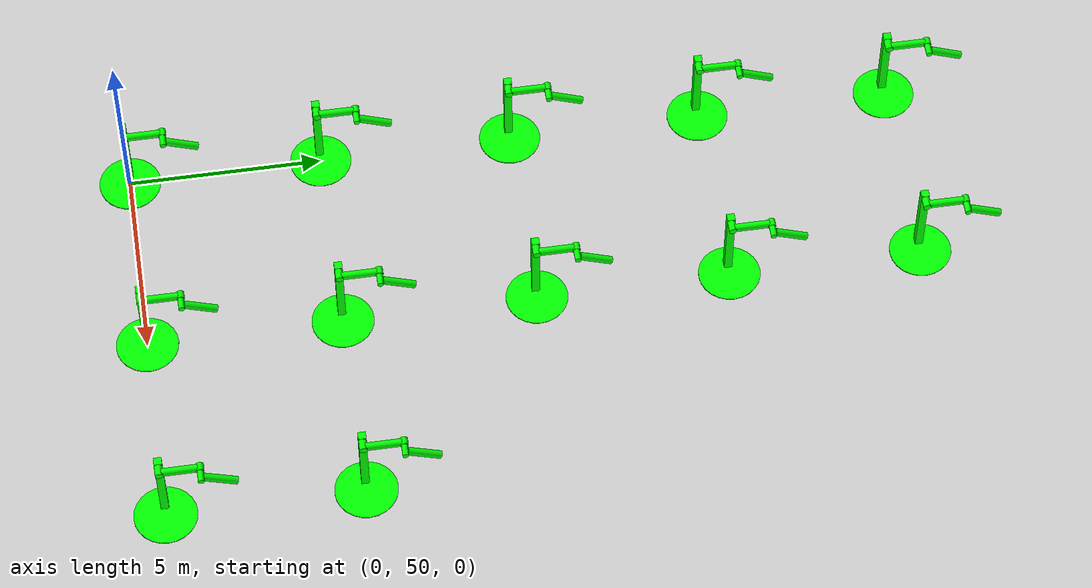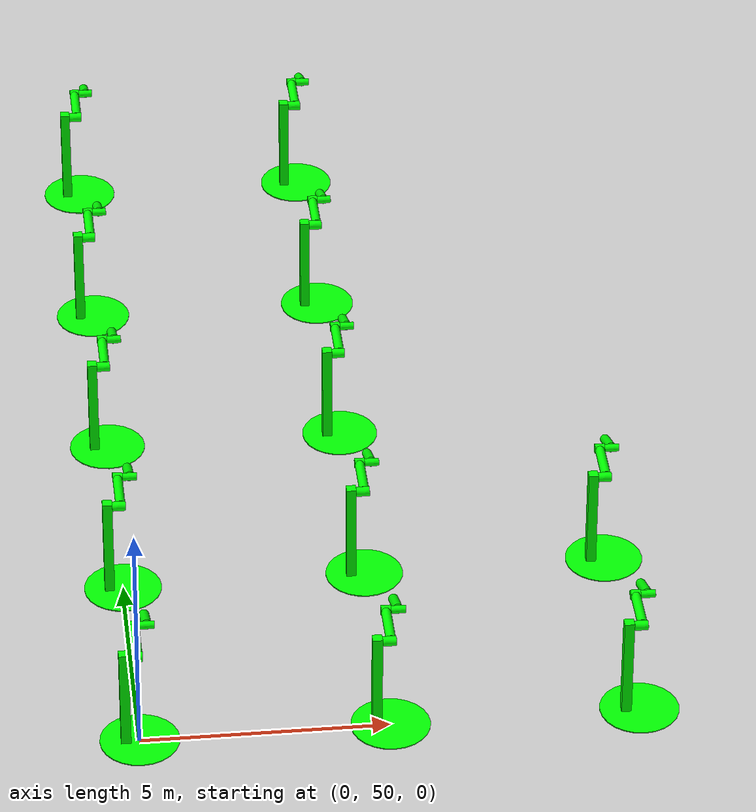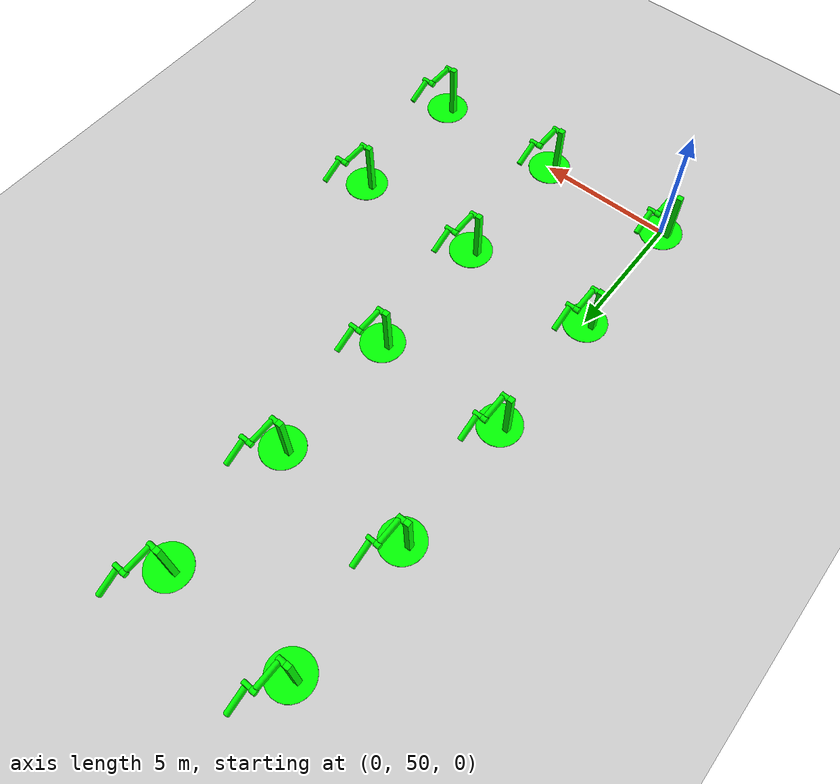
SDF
<sdf version="1.6">
 <world name="double_pendulums">
  <model name="ground_plane">
   <static>true</static>
   <link name="link">
    <collision name="collision">
     <geometry><plane><normal>0 0 1</normal><size>100 100</size></plane></geometry>
    </collision>
    <visual name="visual">
     <geometry><plane><normal>0 0 1</normal><size>100 100</size></plane></geometry>
     <material>
      <ambient>0.8 0.8 0.8 1</ambient>
      <diffuse>0.8 0.8 0.8 1</diffuse>
      <specular>0.8 0.8 0.8 1</specular>
     </material>
    </visual>
   </link>
  </model>
  <model name="dbl_pendulum_155">
   <pose>0 50 0 0 0 0</pose>
   <link name="base">
    <inertial><mass>100</mass></inertial>
    <visual name="vis_plate_on_ground">
     <pose>0 0 0.01 0 0 0</pose>
     <geometry><cylinder><radius>0.8</radius><length>0.02</length></cylinder></geometry>
     <material><ambient>0 1 0 1</ambient><diffuse>0 1 0 1</diffuse><specular>0 1 0 1</specular></material>
    </visual>
    <visual name="vis_pole">
     <pose>-0.275 0 1.1 0 0 0</pose>
     <geometry><box><size>0.2 0.2 2.2</size></box></geometry>
     <material><ambient>0 1 0 1</ambient><diffuse>0 1 0 1</diffuse><specular>0 1 0 1</specular></material>
    </visual>
    <collision name="col_plate_on_ground">
     <pose>0 0 0.01 0 0 0</pose>
     <geometry><cylinder><radius>0.8</radius><length>0.02</length></cylinder></geometry>
    </collision>
    <collision name="col_pole">
     <pose>-0.275 0 1.1 0 0 0</pose>
     <geometry><box><size>0.2 0.2 2.2</size></box></geometry>
    </collision>
   </link>
   <link name="upper_link">
    <pose>0 0 2.1 -1.5708 0 0</pose>
    <inertial><pose>0 0 0.5 0 0 0</pose></inertial>
    <visual name="vis_upper_joint">
     <pose>-0.05 0 0 0 1.5708 0</pose>
     <geometry><cylinder><radius>0.1</radius><length>0.3</length></cylinder></geometry>
     <material><ambient>0 1 0 1</ambient><diffuse>0 1 0 1</diffuse><specular>0 1 0 1</specular></material>
    </visual>
    <visual name="vis_lower_joint">
     <pose>0 0 1.0 0 1.5708 0</pose>
     <geometry><cylinder><radius>0.1</radius><length>0.2</length></cylinder></geometry>
     <material><ambient>0 1 0 1</ambient><diffuse>0 1 0 1</diffuse><specular>0 1 0 1</specular></material>
    </visual>
    <visual name="vis_cylinder">
     <pose>0 0 0.5 0 0 0</pose>
     <geometry><cylinder><radius>0.1</radius><length>0.9</length></cylinder></geometry>
     <material><ambient>0 1 0 1</ambient><diffuse>0 1 0 1</diffuse><specular>0 1 0 1</specular></material>
    </visual>
    <collision name="col_upper_joint">
     <pose>-0.05 0 0 0 1.5708 0</pose>
     <geometry><cylinder><radius>0.1</radius><length>0.3</length></cylinder></geometry>
    </collision>
    <collision name="col_lower_joint">
     <pose>0 0 1.0 0 1.5708 0</pose>
     <geometry><cylinder><radius>0.1</radius><length>0.2</length></cylinder></geometry>
    </collision>
    <collision name="col_cylinder">
     <pose>0 0 0.5 0 0 0</pose>
     <geometry><cylinder><radius>0.1</radius><length>0.9</length></cylinder></geometry>
    </collision>
   </link>
   <link name="lower_link">
    <pose>0.25 1.0 2.1 -2 0 0</pose>
    <inertial><pose>0 0 0.5 0 0 0</pose></inertial>
    <visual name="vis_lower_joint">
     <pose>0 0 0 0 1.5708 0</pose>
     <geometry><cylinder><radius>0.08</radius><length>0.3</length></cylinder></geometry>
     <material><ambient>0 1 0 1</ambient><diffuse>0 1 0 1</diffuse><specular>0 1 0 1</specular></material>
    </visual>
    <visual name="vis_cylinder">
     <pose>0 0 0.5 0 0 0</pose>
     <geometry><cylinder><radius>0.1</radius><length>0.9</length></cylinder></geometry>
     <material><ambient>0 1 0 1</ambient><diffuse>0 1 0 1</diffuse><specular>0 1 0 1</specular></material>
    </visual>
    <collision name="col_lower_joint">
     <pose>0 0 0 0 1.5708 0</pose>
     <geometry><cylinder><radius>0.08</radius><length>0.3</length></cylinder></geometry>
    </collision>
    <collision name="col_cylinder">
     <pose>0 0 0.5 0 0 0</pose>
     <geometry><cylinder><radius>0.1</radius><length>0.9</length></cylinder></geometry>
    </collision>
   </link>
   <joint name="upper_joint" type="revolute">
    <parent>base</parent>
    <child>upper_link</child>
    <axis><xyz>1.0 0 0</xyz></axis>
   </joint>
   <joint name="lower_joint" type="revolute">
    <parent>upper_link</parent>
    <child>lower_link</child>
    <axis><xyz>1.0 0 0</xyz></axis>
   </joint>
  </model>
  <model name="dbl_pendulum_156">
   <pose>5 50 0 0 0 0</pose>
   <link name="base">
    <inertial><mass>100</mass></inertial>
    <visual name="vis_plate_on_ground">
     <pose>0 0 0.01 0 0 0</pose>
     <geometry><cylinder><radius>0.8</radius><length>0.02</length></cylinder></geometry>
     <material><ambient>0 1 0 1</ambient><diffuse>0 1 0 1</diffuse><specular>0 1 0 1</specular></material>
    </visual>
    <visual name="vis_pole">
     <pose>-0.275 0 1.1 0 0 0</pose>
     <geometry><box><size>0.2 0.2 2.2</size></box></geometry>
     <material><ambient>0 1 0 1</ambient><diffuse>0 1 0 1</diffuse><specular>0 1 0 1</specular></material>
    </visual>
    <collision name="col_plate_on_ground">
     <pose>0 0 0.01 0 0 0</pose>
     <geometry><cylinder><radius>0.8</radius><length>0.02</length></cylinder></geometry>
    </collision>
    <collision name="col_pole">
     <pose>-0.275 0 1.1 0 0 0</pose>
     <geometry><box><size>0.2 0.2 2.2</size></box></geometry>
    </collision>
   </link>
   <link name="upper_link">
    <pose>0 0 2.1 -1.5708 0 0</pose>
    <inertial><pose>0 0 0.5 0 0 0</pose></inertial>
    <visual name="vis_upper_joint">
     <pose>-0.05 0 0 0 1.5708 0</pose>
     <geometry><cylinder><radius>0.1</radius><length>0.3</length></cylinder></geometry>
     <material><ambient>0 1 0 1</ambient><diffuse>0 1 0 1</diffuse><specular>0 1 0 1</specular></material>
    </visual>
    <visual name="vis_lower_joint">
     <pose>0 0 1.0 0 1.5708 0</pose>
     <geometry><cylinder><radius>0.1</radius><length>0.2</length></cylinder></geometry>
     <material><ambient>0 1 0 1</ambient><diffuse>0 1 0 1</diffuse><specular>0 1 0 1</specular></material>
    </visual>
    <visual name="vis_cylinder">
     <pose>0 0 0.5 0 0 0</pose>
     <geometry><cylinder><radius>0.1</radius><length>0.9</length></cylinder></geometry>
     <material><ambient>0 1 0 1</ambient><diffuse>0 1 0 1</diffuse><specular>0 1 0 1</specular></material>
    </visual>
    <collision name="col_upper_joint">
     <pose>-0.05 0 0 0 1.5708 0</pose>
     <geometry><cylinder><radius>0.1</radius><length>0.3</length></cylinder></geometry>
    </collision>
    <collision name="col_lower_joint">
     <pose>0 0 1.0 0 1.5708 0</pose>
     <geometry><cylinder><radius>0.1</radius><length>0.2</length></cylinder></geometry>
    </collision>
    <collision name="col_cylinder">
     <pose>0 0 0.5 0 0 0</pose>
     <geometry><cylinder><radius>0.1</radius><length>0.9</length></cylinder></geometry>
    </collision>
   </link>
   <link name="lower_link">
    <pose>0.25 1.0 2.1 -2 0 0</pose>
    <inertial><pose>0 0 0.5 0 0 0</pose></inertial>
    <visual name="vis_lower_joint">
     <pose>0 0 0 0 1.5708 0</pose>
     <geometry><cylinder><radius>0.08</radius><length>0.3</length></cylinder></geometry>
     <material><ambient>0 1 0 1</ambient><diffuse>0 1 0 1</diffuse><specular>0 1 0 1</specular></material>
    </visual>
    <visual name="vis_cylinder">
     <pose>0 0 0.5 0 0 0</pose>
     <geometry><cylinder><radius>0.1</radius><length>0.9</length></cylinder></geometry>
     <material><ambient>0 1 0 1</ambient><diffuse>0 1 0 1</diffuse><specular>0 1 0 1</specular></material>
    </visual>
    <collision name="col_lower_joint">
     <pose>0 0 0 0 1.5708 0</pose>
     <geometry><cylinder><radius>0.08</radius><length>0.3</length></cylinder></geometry>
    </collision>
    <collision name="col_cylinder">
     <pose>0 0 0.5 0 0 0</pose>
     <geometry><cylinder><radius>0.1</radius><length>0.9</length></cylinder></geometry>
    </collision>
   </link>
   <joint name="upper_joint" type="revolute">
    <parent>base</parent>
    <child>upper_link</child>
    <axis><xyz>1.0 0 0</xyz></axis>
   </joint>
   <joint name="lower_joint" type="revolute">
    <parent>upper_link</parent>
    <child>lower_link</child>
    <axis><xyz>1.0 0 0</xyz></axis>
   </joint>
  </model>
  <model name="dbl_pendulum_157">
   <pose>10 50 0 0 0 0</pose>
   <link name="base">
    <inertial><mass>100</mass></inertial>
    <visual name="vis_plate_on_ground">
     <pose>0 0 0.01 0 0 0</pose>
     <geometry><cylinder><radius>0.8</radius><length>0.02</length></cylinder></geometry>
     <material><ambient>0 1 0 1</ambient><diffuse>0 1 0 1</diffuse><specular>0 1 0 1</specular></material>
    </visual>
    <visual name="vis_pole">
     <pose>-0.275 0 1.1 0 0 0</pose>
     <geometry><box><size>0.2 0.2 2.2</size></box></geometry>
     <material><ambient>0 1 0 1</ambient><diffuse>0 1 0 1</diffuse><specular>0 1 0 1</specular></material>
    </visual>
    <collision name="col_plate_on_ground">
     <pose>0 0 0.01 0 0 0</pose>
     <geometry><cylinder><radius>0.8</radius><length>0.02</length></cylinder></geometry>
    </collision>
    <collision name="col_pole">
     <pose>-0.275 0 1.1 0 0 0</pose>
     <geometry><box><size>0.2 0.2 2.2</size></box></geometry>
    </collision>
   </link>
   <link name="upper_link">
    <pose>0 0 2.1 -1.5708 0 0</pose>
    <inertial><pose>0 0 0.5 0 0 0</pose></inertial>
    <visual name="vis_upper_joint">
     <pose>-0.05 0 0 0 1.5708 0</pose>
     <geometry><cylinder><radius>0.1</radius><length>0.3</length></cylinder></geometry>
     <material><ambient>0 1 0 1</ambient><diffuse>0 1 0 1</diffuse><specular>0 1 0 1</specular></material>
    </visual>
    <visual name="vis_lower_joint">
     <pose>0 0 1.0 0 1.5708 0</pose>
     <geometry><cylinder><radius>0.1</radius><length>0.2</length></cylinder></geometry>
     <material><ambient>0 1 0 1</ambient><diffuse>0 1 0 1</diffuse><specular>0 1 0 1</specular></material>
    </visual>
    <visual name="vis_cylinder">
     <pose>0 0 0.5 0 0 0</pose>
     <geometry><cylinder><radius>0.1</radius><length>0.9</length></cylinder></geometry>
     <material><ambient>0 1 0 1</ambient><diffuse>0 1 0 1</diffuse><specular>0 1 0 1</specular></material>
    </visual>
    <collision name="col_upper_joint">
     <pose>-0.05 0 0 0 1.5708 0</pose>
     <geometry><cylinder><radius>0.1</radius><length>0.3</length></cylinder></geometry>
    </collision>
    <collision name="col_lower_joint">
     <pose>0 0 1.0 0 1.5708 0</pose>
     <geometry><cylinder><radius>0.1</radius><length>0.2</length></cylinder></geometry>
    </collision>
    <collision name="col_cylinder">
     <pose>0 0 0.5 0 0 0</pose>
     <geometry><cylinder><radius>0.1</radius><length>0.9</length></cylinder></geometry>
    </collision>
   </link>
   <link name="lower_link">
    <pose>0.25 1.0 2.1 -2 0 0</pose>
    <inertial><pose>0 0 0.5 0 0 0</pose></inertial>
    <visual name="vis_lower_joint">
     <pose>0 0 0 0 1.5708 0</pose>
     <geometry><cylinder><radius>0.08</radius><length>0.3</length></cylinder></geometry>
     <material><ambient>0 1 0 1</ambient><diffuse>0 1 0 1</diffuse><specular>0 1 0 1</specular></material>
    </visual>
    <visual name="vis_cylinder">
     <pose>0 0 0.5 0 0 0</pose>
     <geometry><cylinder><radius>0.1</radius><length>0.9</length></cylinder></geometry>
     <material><ambient>0 1 0 1</ambient><diffuse>0 1 0 1</diffuse><specular>0 1 0 1</specular></material>
    </visual>
    <collision name="col_lower_joint">
     <pose>0 0 0 0 1.5708 0</pose>
     <geometry><cylinder><radius>0.08</radius><length>0.3</length></cylinder></geometry>
    </collision>
    <collision name="col_cylinder">
     <pose>0 0 0.5 0 0 0</pose>
     <geometry><cylinder><radius>0.1</radius><length>0.9</length></cylinder></geometry>
    </collision>
   </link>
   <joint name="upper_joint" type="revolute">
    <parent>base</parent>
    <child>upper_link</child>
    <axis><xyz>1.0 0 0</xyz></axis>
   </joint>
   <joint name="lower_joint" type="revolute">
    <parent>upper_link</parent>
    <child>lower_link</child>
    <axis><xyz>1.0 0 0</xyz></axis>
   </joint>
  </model>
  <model name="dbl_pendulum_170">
   <pose>0 55 0 0 0 0</pose>
   <link name="base">
    <inertial><mass>100</mass></inertial>
    <visual name="vis_plate_on_ground">
     <pose>0 0 0.01 0 0 0</pose>
     <geometry><cylinder><radius>0.8</radius><length>0.02</length></cylinder></geometry>
     <material><ambient>0 1 0 1</ambient><diffuse>0 1 0 1</diffuse><specular>0 1 0 1</specular></material>
    </visual>
    <visual name="vis_pole">
     <pose>-0.275 0 1.1 0 0 0</pose>
     <geometry><box><size>0.2 0.2 2.2</size></box></geometry>
     <material><ambient>0 1 0 1</ambient><diffuse>0 1 0 1</diffuse><specular>0 1 0 1</specular></material>
    </visual>
    <collision name="col_plate_on_ground">
     <pose>0 0 0.01 0 0 0</pose>
     <geometry><cylinder><radius>0.8</radius><length>0.02</length></cylinder></geometry>
    </collision>
    <collision name="col_pole">
     <pose>-0.275 0 1.1 0 0 0</pose>
     <geometry><box><size>0.2 0.2 2.2</size></box></geometry>
    </collision>
   </link>
   <link name="upper_link">
    <pose>0 0 2.1 -1.5708 0 0</pose>
    <inertial><pose>0 0 0.5 0 0 0</pose></inertial>
    <visual name="vis_upper_joint">
     <pose>-0.05 0 0 0 1.5708 0</pose>
     <geometry><cylinder><radius>0.1</radius><length>0.3</length></cylinder></geometry>
     <material><ambient>0 1 0 1</ambient><diffuse>0 1 0 1</diffuse><specular>0 1 0 1</specular></material>
    </visual>
    <visual name="vis_lower_joint">
     <pose>0 0 1.0 0 1.5708 0</pose>
     <geometry><cylinder><radius>0.1</radius><length>0.2</length></cylinder></geometry>
     <material><ambient>0 1 0 1</ambient><diffuse>0 1 0 1</diffuse><specular>0 1 0 1</specular></material>
    </visual>
    <visual name="vis_cylinder">
     <pose>0 0 0.5 0 0 0</pose>
     <geometry><cylinder><radius>0.1</radius><length>0.9</length></cylinder></geometry>
     <material><ambient>0 1 0 1</ambient><diffuse>0 1 0 1</diffuse><specular>0 1 0 1</specular></material>
    </visual>
    <collision name="col_upper_joint">
     <pose>-0.05 0 0 0 1.5708 0</pose>
     <geometry><cylinder><radius>0.1</radius><length>0.3</length></cylinder></geometry>
    </collision>
    <collision name="col_lower_joint">
     <pose>0 0 1.0 0 1.5708 0</pose>
     <geometry><cylinder><radius>0.1</radius><length>0.2</length></cylinder></geometry>
    </collision>
    <collision name="col_cylinder">
     <pose>0 0 0.5 0 0 0</pose>
     <geometry><cylinder><radius>0.1</radius><length>0.9</length></cylinder></geometry>
    </collision>
   </link>
   <link name="lower_link">
    <pose>0.25 1.0 2.1 -2 0 0</pose>
    <inertial><pose>0 0 0.5 0 0 0</pose></inertial>
    <visual name="vis_lower_joint">
     <pose>0 0 0 0 1.5708 0</pose>
     <geometry><cylinder><radius>0.08</radius><length>0.3</length></cylinder></geometry>
     <material><ambient>0 1 0 1</ambient><diffuse>0 1 0 1</diffuse><specular>0 1 0 1</specular></material>
    </visual>
    <visual name="vis_cylinder">
     <pose>0 0 0.5 0 0 0</pose>
     <geometry><cylinder><radius>0.1</radius><length>0.9</length></cylinder></geometry>
     <material><ambient>0 1 0 1</ambient><diffuse>0 1 0 1</diffuse><specular>0 1 0 1</specular></material>
    </visual>
    <collision name="col_lower_joint">
     <pose>0 0 0 0 1.5708 0</pose>
     <geometry><cylinder><radius>0.08</radius><length>0.3</length></cylinder></geometry>
    </collision>
    <collision name="col_cylinder">
     <pose>0 0 0.5 0 0 0</pose>
     <geometry><cylinder><radius>0.1</radius><length>0.9</length></cylinder></geometry>
    </collision>
   </link>
   <joint name="upper_joint" type="revolute">
    <parent>base</parent>
    <child>upper_link</child>
    <axis><xyz>1.0 0 0</xyz></axis>
   </joint>
   <joint name="lower_joint" type="revolute">
    <parent>upper_link</parent>
    <child>lower_link</child>
    <axis><xyz>1.0 0 0</xyz></axis>
   </joint>
  </model>
  <model name="dbl_pendulum_171">
   <pose>5 55 0 0 0 0</pose>
   <link name="base">
    <inertial><mass>100</mass></inertial>
    <visual name="vis_plate_on_ground">
     <pose>0 0 0.01 0 0 0</pose>
     <geometry><cylinder><radius>0.8</radius><length>0.02</length></cylinder></geometry>
     <material><ambient>0 1 0 1</ambient><diffuse>0 1 0 1</diffuse><specular>0 1 0 1</specular></material>
    </visual>
    <visual name="vis_pole">
     <pose>-0.275 0 1.1 0 0 0</pose>
     <geometry><box><size>0.2 0.2 2.2</size></box></geometry>
     <material><ambient>0 1 0 1</ambient><diffuse>0 1 0 1</diffuse><specular>0 1 0 1</specular></material>
    </visual>
    <collision name="col_plate_on_ground">
     <pose>0 0 0.01 0 0 0</pose>
     <geometry><cylinder><radius>0.8</radius><length>0.02</length></cylinder></geometry>
    </collision>
    <collision name="col_pole">
     <pose>-0.275 0 1.1 0 0 0</pose>
     <geometry><box><size>0.2 0.2 2.2</size></box></geometry>
    </collision>
   </link>
   <link name="upper_link">
    <pose>0 0 2.1 -1.5708 0 0</pose>
    <inertial><pose>0 0 0.5 0 0 0</pose></inertial>
    <visual name="vis_upper_joint">
     <pose>-0.05 0 0 0 1.5708 0</pose>
     <geometry><cylinder><radius>0.1</radius><length>0.3</length></cylinder></geometry>
     <material><ambient>0 1 0 1</ambient><diffuse>0 1 0 1</diffuse><specular>0 1 0 1</specular></material>
    </visual>
    <visual name="vis_lower_joint">
     <pose>0 0 1.0 0 1.5708 0</pose>
     <geometry><cylinder><radius>0.1</radius><length>0.2</length></cylinder></geometry>
     <material><ambient>0 1 0 1</ambient><diffuse>0 1 0 1</diffuse><specular>0 1 0 1</specular></material>
    </visual>
    <visual name="vis_cylinder">
     <pose>0 0 0.5 0 0 0</pose>
     <geometry><cylinder><radius>0.1</radius><length>0.9</length></cylinder></geometry>
     <material><ambient>0 1 0 1</ambient><diffuse>0 1 0 1</diffuse><specular>0 1 0 1</specular></material>
    </visual>
    <collision name="col_upper_joint">
     <pose>-0.05 0 0 0 1.5708 0</pose>
     <geometry><cylinder><radius>0.1</radius><length>0.3</length></cylinder></geometry>
    </collision>
    <collision name="col_lower_joint">
     <pose>0 0 1.0 0 1.5708 0</pose>
     <geometry><cylinder><radius>0.1</radius><length>0.2</length></cylinder></geometry>
    </collision>
    <collision name="col_cylinder">
     <pose>0 0 0.5 0 0 0</pose>
     <geometry><cylinder><radius>0.1</radius><length>0.9</length></cylinder></geometry>
    </collision>
   </link>
   <link name="lower_link">
    <pose>0.25 1.0 2.1 -2 0 0</pose>
    <inertial><pose>0 0 0.5 0 0 0</pose></inertial>
    <visual name="vis_lower_joint">
     <pose>0 0 0 0 1.5708 0</pose>
     <geometry><cylinder><radius>0.08</radius><length>0.3</length></cylinder></geometry>
     <material><ambient>0 1 0 1</ambient><diffuse>0 1 0 1</diffuse><specular>0 1 0 1</specular></material>
    </visual>
    <visual name="vis_cylinder">
     <pose>0 0 0.5 0 0 0</pose>
     <geometry><cylinder><radius>0.1</radius><length>0.9</length></cylinder></geometry>
     <material><ambient>0 1 0 1</ambient><diffuse>0 1 0 1</diffuse><specular>0 1 0 1</specular></material>
    </visual>
    <collision name="col_lower_joint">
     <pose>0 0 0 0 1.5708 0</pose>
     <geometry><cylinder><radius>0.08</radius><length>0.3</length></cylinder></geometry>
    </collision>
    <collision name="col_cylinder">
     <pose>0 0 0.5 0 0 0</pose>
     <geometry><cylinder><radius>0.1</radius><length>0.9</length></cylinder></geometry>
    </collision>
   </link>
   <joint name="upper_joint" type="revolute">
    <parent>base</parent>
    <child>upper_link</child>
    <axis><xyz>1.0 0 0</xyz></axis>
   </joint>
   <joint name="lower_joint" type="revolute">
    <parent>upper_link</parent>
    <child>lower_link</child>
    <axis><xyz>1.0 0 0</xyz></axis>
   </joint>
  </model>
  <model name="dbl_pendulum_172">
   <pose>10 55 0 0 0 0</pose>
   <link name="base">
    <inertial><mass>100</mass></inertial>
    <visual name="vis_plate_on_ground">
     <pose>0 0 0.01 0 0 0</pose>
     <geometry><cylinder><radius>0.8</radius><length>0.02</length></cylinder></geometry>
     <material><ambient>0 1 0 1</ambient><diffuse>0 1 0 1</diffuse><specular>0 1 0 1</specular></material>
    </visual>
    <visual name="vis_pole">
     <pose>-0.275 0 1.1 0 0 0</pose>
     <geometry><box><size>0.2 0.2 2.2</size></box></geometry>
     <material><ambient>0 1 0 1</ambient><diffuse>0 1 0 1</diffuse><specular>0 1 0 1</specular></material>
    </visual>
    <collision name="col_plate_on_ground">
     <pose>0 0 0.01 0 0 0</pose>
     <geometry><cylinder><radius>0.8</radius><length>0.02</length></cylinder></geometry>
    </collision>
    <collision name="col_pole">
     <pose>-0.275 0 1.1 0 0 0</pose>
     <geometry><box><size>0.2 0.2 2.2</size></box></geometry>
    </collision>
   </link>
   <link name="upper_link">
    <pose>0 0 2.1 -1.5708 0 0</pose>
    <inertial><pose>0 0 0.5 0 0 0</pose></inertial>
    <visual name="vis_upper_joint">
     <pose>-0.05 0 0 0 1.5708 0</pose>
     <geometry><cylinder><radius>0.1</radius><length>0.3</length></cylinder></geometry>
     <material><ambient>0 1 0 1</ambient><diffuse>0 1 0 1</diffuse><specular>0 1 0 1</specular></material>
    </visual>
    <visual name="vis_lower_joint">
     <pose>0 0 1.0 0 1.5708 0</pose>
     <geometry><cylinder><radius>0.1</radius><length>0.2</length></cylinder></geometry>
     <material><ambient>0 1 0 1</ambient><diffuse>0 1 0 1</diffuse><specular>0 1 0 1</specular></material>
    </visual>
    <visual name="vis_cylinder">
     <pose>0 0 0.5 0 0 0</pose>
     <geometry><cylinder><radius>0.1</radius><length>0.9</length></cylinder></geometry>
     <material><ambient>0 1 0 1</ambient><diffuse>0 1 0 1</diffuse><specular>0 1 0 1</specular></material>
    </visual>
    <collision name="col_upper_joint">
     <pose>-0.05 0 0 0 1.5708 0</pose>
     <geometry><cylinder><radius>0.1</radius><length>0.3</length></cylinder></geometry>
    </collision>
    <collision name="col_lower_joint">
     <pose>0 0 1.0 0 1.5708 0</pose>
     <geometry><cylinder><radius>0.1</radius><length>0.2</length></cylinder></geometry>
    </collision>
    <collision name="col_cylinder">
     <pose>0 0 0.5 0 0 0</pose>
     <geometry><cylinder><radius>0.1</radius><length>0.9</length></cylinder></geometry>
    </collision>
   </link>
   <link name="lower_link">
    <pose>0.25 1.0 2.1 -2 0 0</pose>
    <inertial><pose>0 0 0.5 0 0 0</pose></inertial>
    <visual name="vis_lower_joint">
     <pose>0 0 0 0 1.5708 0</pose>
     <geometry><cylinder><radius>0.08</radius><length>0.3</length></cylinder></geometry>
     <material><ambient>0 1 0 1</ambient><diffuse>0 1 0 1</diffuse><specular>0 1 0 1</specular></material>
    </visual>
    <visual name="vis_cylinder">
     <pose>0 0 0.5 0 0 0</pose>
     <geometry><cylinder><radius>0.1</radius><length>0.9</length></cylinder></geometry>
     <material><ambient>0 1 0 1</ambient><diffuse>0 1 0 1</diffuse><specular>0 1 0 1</specular></material>
    </visual>
    <collision name="col_lower_joint">
     <pose>0 0 0 0 1.5708 0</pose>
     <geometry><cylinder><radius>0.08</radius><length>0.3</length></cylinder></geometry>
    </collision>
    <collision name="col_cylinder">
     <pose>0 0 0.5 0 0 0</pose>
     <geometry><cylinder><radius>0.1</radius><length>0.9</length></cylinder></geometry>
    </collision>
   </link>
   <joint name="upper_joint" type="revolute">
    <parent>base</parent>
    <child>upper_link</child>
    <axis><xyz>1.0 0 0</xyz></axis>
   </joint>
   <joint name="lower_joint" type="revolute">
    <parent>upper_link</parent>
    <child>lower_link</child>
    <axis><xyz>1.0 0 0</xyz></axis>
   </joint>
  </model>
  <model name="dbl_pendulum_185">
   <pose>0 60 0 0 0 0</pose>
   <link name="base">
    <inertial><mass>100</mass></inertial>
    <visual name="vis_plate_on_ground">
     <pose>0 0 0.01 0 0 0</pose>
     <geometry><cylinder><radius>0.8</radius><length>0.02</length></cylinder></geometry>
     <material><ambient>0 1 0 1</ambient><diffuse>0 1 0 1</diffuse><specular>0 1 0 1</specular></material>
    </visual>
    <visual name="vis_pole">
     <pose>-0.275 0 1.1 0 0 0</pose>
     <geometry><box><size>0.2 0.2 2.2</size></box></geometry>
     <material><ambient>0 1 0 1</ambient><diffuse>0 1 0 1</diffuse><specular>0 1 0 1</specular></material>
    </visual>
    <collision name="col_plate_on_ground">
     <pose>0 0 0.01 0 0 0</pose>
     <geometry><cylinder><radius>0.8</radius><length>0.02</length></cylinder></geometry>
    </collision>
    <collision name="col_pole">
     <pose>-0.275 0 1.1 0 0 0</pose>
     <geometry><box><size>0.2 0.2 2.2</size></box></geometry>
    </collision>
   </link>
   <link name="upper_link">
    <pose>0 0 2.1 -1.5708 0 0</pose>
    <inertial><pose>0 0 0.5 0 0 0</pose></inertial>
    <visual name="vis_upper_joint">
     <pose>-0.05 0 0 0 1.5708 0</pose>
     <geometry><cylinder><radius>0.1</radius><length>0.3</length></cylinder></geometry>
     <material><ambient>0 1 0 1</ambient><diffuse>0 1 0 1</diffuse><specular>0 1 0 1</specular></material>
    </visual>
    <visual name="vis_lower_joint">
     <pose>0 0 1.0 0 1.5708 0</pose>
     <geometry><cylinder><radius>0.1</radius><length>0.2</length></cylinder></geometry>
     <material><ambient>0 1 0 1</ambient><diffuse>0 1 0 1</diffuse><specular>0 1 0 1</specular></material>
    </visual>
    <visual name="vis_cylinder">
     <pose>0 0 0.5 0 0 0</pose>
     <geometry><cylinder><radius>0.1</radius><length>0.9</length></cylinder></geometry>
     <material><ambient>0 1 0 1</ambient><diffuse>0 1 0 1</diffuse><specular>0 1 0 1</specular></material>
    </visual>
    <collision name="col_upper_joint">
     <pose>-0.05 0 0 0 1.5708 0</pose>
     <geometry><cylinder><radius>0.1</radius><length>0.3</length></cylinder></geometry>
    </collision>
    <collision name="col_lower_joint">
     <pose>0 0 1.0 0 1.5708 0</pose>
     <geometry><cylinder><radius>0.1</radius><length>0.2</length></cylinder></geometry>
    </collision>
    <collision name="col_cylinder">
     <pose>0 0 0.5 0 0 0</pose>
     <geometry><cylinder><radius>0.1</radius><length>0.9</length></cylinder></geometry>
    </collision>
   </link>
   <link name="lower_link">
    <pose>0.25 1.0 2.1 -2 0 0</pose>
    <inertial><pose>0 0 0.5 0 0 0</pose></inertial>
    <visual name="vis_lower_joint">
     <pose>0 0 0 0 1.5708 0</pose>
     <geometry><cylinder><radius>0.08</radius><length>0.3</length></cylinder></geometry>
     <material><ambient>0 1 0 1</ambient><diffuse>0 1 0 1</diffuse><specular>0 1 0 1</specular></material>
    </visual>
    <visual name="vis_cylinder">
     <pose>0 0 0.5 0 0 0</pose>
     <geometry><cylinder><radius>0.1</radius><length>0.9</length></cylinder></geometry>
     <material><ambient>0 1 0 1</ambient><diffuse>0 1 0 1</diffuse><specular>0 1 0 1</specular></material>
    </visual>
    <collision name="col_lower_joint">
     <pose>0 0 0 0 1.5708 0</pose>
     <geometry><cylinder><radius>0.08</radius><length>0.3</length></cylinder></geometry>
    </collision>
    <collision name="col_cylinder">
     <pose>0 0 0.5 0 0 0</pose>
     <geometry><cylinder><radius>0.1</radius><length>0.9</length></cylinder></geometry>
    </collision>
   </link>
   <joint name="upper_joint" type="revolute">
    <parent>base</parent>
    <child>upper_link</child>
    <axis><xyz>1.0 0 0</xyz></axis>
   </joint>
   <joint name="lower_joint" type="revolute">
    <parent>upper_link</parent>
    <child>lower_link</child>
    <axis><xyz>1.0 0 0</xyz></axis>
   </joint>
  </model>
  <model name="dbl_pendulum_186">
   <pose>5 60 0 0 0 0</pose>
   <link name="base">
    <inertial><mass>100</mass></inertial>
    <visual name="vis_plate_on_ground">
     <pose>0 0 0.01 0 0 0</pose>
     <geometry><cylinder><radius>0.8</radius><length>0.02</length></cylinder></geometry>
     <material><ambient>0 1 0 1</ambient><diffuse>0 1 0 1</diffuse><specular>0 1 0 1</specular></material>
    </visual>
    <visual name="vis_pole">
     <pose>-0.275 0 1.1 0 0 0</pose>
     <geometry><box><size>0.2 0.2 2.2</size></box></geometry>
     <material><ambient>0 1 0 1</ambient><diffuse>0 1 0 1</diffuse><specular>0 1 0 1</specular></material>
    </visual>
    <collision name="col_plate_on_ground">
     <pose>0 0 0.01 0 0 0</pose>
     <geometry><cylinder><radius>0.8</radius><length>0.02</length></cylinder></geometry>
    </collision>
    <collision name="col_pole">
     <pose>-0.275 0 1.1 0 0 0</pose>
     <geometry><box><size>0.2 0.2 2.2</size></box></geometry>
    </collision>
   </link>
   <link name="upper_link">
    <pose>0 0 2.1 -1.5708 0 0</pose>
    <inertial><pose>0 0 0.5 0 0 0</pose></inertial>
    <visual name="vis_upper_joint">
     <pose>-0.05 0 0 0 1.5708 0</pose>
     <geometry><cylinder><radius>0.1</radius><length>0.3</length></cylinder></geometry>
     <material><ambient>0 1 0 1</ambient><diffuse>0 1 0 1</diffuse><specular>0 1 0 1</specular></material>
    </visual>
    <visual name="vis_lower_joint">
     <pose>0 0 1.0 0 1.5708 0</pose>
     <geometry><cylinder><radius>0.1</radius><length>0.2</length></cylinder></geometry>
     <material><ambient>0 1 0 1</ambient><diffuse>0 1 0 1</diffuse><specular>0 1 0 1</specular></material>
    </visual>
    <visual name="vis_cylinder">
     <pose>0 0 0.5 0 0 0</pose>
     <geometry><cylinder><radius>0.1</radius><length>0.9</length></cylinder></geometry>
     <material><ambient>0 1 0 1</ambient><diffuse>0 1 0 1</diffuse><specular>0 1 0 1</specular></material>
    </visual>
    <collision name="col_upper_joint">
     <pose>-0.05 0 0 0 1.5708 0</pose>
     <geometry><cylinder><radius>0.1</radius><length>0.3</length></cylinder></geometry>
    </collision>
    <collision name="col_lower_joint">
     <pose>0 0 1.0 0 1.5708 0</pose>
     <geometry><cylinder><radius>0.1</radius><length>0.2</length></cylinder></geometry>
    </collision>
    <collision name="col_cylinder">
     <pose>0 0 0.5 0 0 0</pose>
     <geometry><cylinder><radius>0.1</radius><length>0.9</length></cylinder></geometry>
    </collision>
   </link>
   <link name="lower_link">
    <pose>0.25 1.0 2.1 -2 0 0</pose>
    <inertial><pose>0 0 0.5 0 0 0</pose></inertial>
    <visual name="vis_lower_joint">
     <pose>0 0 0 0 1.5708 0</pose>
     <geometry><cylinder><radius>0.08</radius><length>0.3</length></cylinder></geometry>
     <material><ambient>0 1 0 1</ambient><diffuse>0 1 0 1</diffuse><specular>0 1 0 1</specular></material>
    </visual>
    <visual name="vis_cylinder">
     <pose>0 0 0.5 0 0 0</pose>
     <geometry><cylinder><radius>0.1</radius><length>0.9</length></cylinder></geometry>
     <material><ambient>0 1 0 1</ambient><diffuse>0 1 0 1</diffuse><specular>0 1 0 1</specular></material>
    </visual>
    <collision name="col_lower_joint">
     <pose>0 0 0 0 1.5708 0</pose>
     <geometry><cylinder><radius>0.08</radius><length>0.3</length></cylinder></geometry>
    </collision>
    <collision name="col_cylinder">
     <pose>0 0 0.5 0 0 0</pose>
     <geometry><cylinder><radius>0.1</radius><length>0.9</length></cylinder></geometry>
    </collision>
   </link>
   <joint name="upper_joint" type="revolute">
    <parent>base</parent>
    <child>upper_link</child>
    <axis><xyz>1.0 0 0</xyz></axis>
   </joint>
   <joint name="lower_joint" type="revolute">
    <parent>upper_link</parent>
    <child>lower_link</child>
    <axis><xyz>1.0 0 0</xyz></axis>
   </joint>
  </model>
  <model name="dbl_pendulum_200">
   <pose>0 65 0 0 0 0</pose>
   <link name="base">
    <inertial><mass>100</mass></inertial>
    <visual name="vis_plate_on_ground">
     <pose>0 0 0.01 0 0 0</pose>
     <geometry><cylinder><radius>0.8</radius><length>0.02</length></cylinder></geometry>
     <material><ambient>0 1 0 1</ambient><diffuse>0 1 0 1</diffuse><specular>0 1 0 1</specular></material>
    </visual>
    <visual name="vis_pole">
     <pose>-0.275 0 1.1 0 0 0</pose>
     <geometry><box><size>0.2 0.2 2.2</size></box></geometry>
     <material><ambient>0 1 0 1</ambient><diffuse>0 1 0 1</diffuse><specular>0 1 0 1</specular></material>
    </visual>
    <collision name="col_plate_on_ground">
     <pose>0 0 0.01 0 0 0</pose>
     <geometry><cylinder><radius>0.8</radius><length>0.02</length></cylinder></geometry>
    </collision>
    <collision name="col_pole">
     <pose>-0.275 0 1.1 0 0 0</pose>
     <geometry><box><size>0.2 0.2 2.2</size></box></geometry>
    </collision>
   </link>
   <link name="upper_link">
    <pose>0 0 2.1 -1.5708 0 0</pose>
    <inertial><pose>0 0 0.5 0 0 0</pose></inertial>
    <visual name="vis_upper_joint">
     <pose>-0.05 0 0 0 1.5708 0</pose>
     <geometry><cylinder><radius>0.1</radius><length>0.3</length></cylinder></geometry>
     <material><ambient>0 1 0 1</ambient><diffuse>0 1 0 1</diffuse><specular>0 1 0 1</specular></material>
    </visual>
    <visual name="vis_lower_joint">
     <pose>0 0 1.0 0 1.5708 0</pose>
     <geometry><cylinder><radius>0.1</radius><length>0.2</length></cylinder></geometry>
     <material><ambient>0 1 0 1</ambient><diffuse>0 1 0 1</diffuse><specular>0 1 0 1</specular></material>
    </visual>
    <visual name="vis_cylinder">
     <pose>0 0 0.5 0 0 0</pose>
     <geometry><cylinder><radius>0.1</radius><length>0.9</length></cylinder></geometry>
     <material><ambient>0 1 0 1</ambient><diffuse>0 1 0 1</diffuse><specular>0 1 0 1</specular></material>
    </visual>
    <collision name="col_upper_joint">
     <pose>-0.05 0 0 0 1.5708 0</pose>
     <geometry><cylinder><radius>0.1</radius><length>0.3</length></cylinder></geometry>
    </collision>
    <collision name="col_lower_joint">
     <pose>0 0 1.0 0 1.5708 0</pose>
     <geometry><cylinder><radius>0.1</radius><length>0.2</length></cylinder></geometry>
    </collision>
    <collision name="col_cylinder">
     <pose>0 0 0.5 0 0 0</pose>
     <geometry><cylinder><radius>0.1</radius><length>0.9</length></cylinder></geometry>
    </collision>
   </link>
   <link name="lower_link">
    <pose>0.25 1.0 2.1 -2 0 0</pose>
    <inertial><pose>0 0 0.5 0 0 0</pose></inertial>
    <visual name="vis_lower_joint">
     <pose>0 0 0 0 1.5708 0</pose>
     <geometry><cylinder><radius>0.08</radius><length>0.3</length></cylinder></geometry>
     <material><ambient>0 1 0 1</ambient><diffuse>0 1 0 1</diffuse><specular>0 1 0 1</specular></material>
    </visual>
    <visual name="vis_cylinder">
     <pose>0 0 0.5 0 0 0</pose>
     <geometry><cylinder><radius>0.1</radius><length>0.9</length></cylinder></geometry>
     <material><ambient>0 1 0 1</ambient><diffuse>0 1 0 1</diffuse><specular>0 1 0 1</specular></material>
    </visual>
    <collision name="col_lower_joint">
     <pose>0 0 0 0 1.5708 0</pose>
     <geometry><cylinder><radius>0.08</radius><length>0.3</length></cylinder></geometry>
    </collision>
    <collision name="col_cylinder">
     <pose>0 0 0.5 0 0 0</pose>
     <geometry><cylinder><radius>0.1</radius><length>0.9</length></cylinder></geometry>
    </collision>
   </link>
   <joint name="upper_joint" type="revolute">
    <parent>base</parent>
    <child>upper_link</child>
    <axis><xyz>1.0 0 0</xyz></axis>
   </joint>
   <joint name="lower_joint" type="revolute">
    <parent>upper_link</parent>
    <child>lower_link</child>
    <axis><xyz>1.0 0 0</xyz></axis>
   </joint>
  </model>
  <model name="dbl_pendulum_201">
   <pose>5 65 0 0 0 0</pose>
   <link name="base">
    <inertial><mass>100</mass></inertial>
    <visual name="vis_plate_on_ground">
     <pose>0 0 0.01 0 0 0</pose>
     <geometry><cylinder><radius>0.8</radius><length>0.02</length></cylinder></geometry>
     <material><ambient>0 1 0 1</ambient><diffuse>0 1 0 1</diffuse><specular>0 1 0 1</specular></material>
    </visual>
    <visual name="vis_pole">
     <pose>-0.275 0 1.1 0 0 0</pose>
     <geometry><box><size>0.2 0.2 2.2</size></box></geometry>
     <material><ambient>0 1 0 1</ambient><diffuse>0 1 0 1</diffuse><specular>0 1 0 1</specular></material>
    </visual>
    <collision name="col_plate_on_ground">
     <pose>0 0 0.01 0 0 0</pose>
     <geometry><cylinder><radius>0.8</radius><length>0.02</length></cylinder></geometry>
    </collision>
    <collision name="col_pole">
     <pose>-0.275 0 1.1 0 0 0</pose>
     <geometry><box><size>0.2 0.2 2.2</size></box></geometry>
    </collision>
   </link>
   <link name="upper_link">
    <pose>0 0 2.1 -1.5708 0 0</pose>
    <inertial><pose>0 0 0.5 0 0 0</pose></inertial>
    <visual name="vis_upper_joint">
     <pose>-0.05 0 0 0 1.5708 0</pose>
     <geometry><cylinder><radius>0.1</radius><length>0.3</length></cylinder></geometry>
     <material><ambient>0 1 0 1</ambient><diffuse>0 1 0 1</diffuse><specular>0 1 0 1</specular></material>
    </visual>
    <visual name="vis_lower_joint">
     <pose>0 0 1.0 0 1.5708 0</pose>
     <geometry><cylinder><radius>0.1</radius><length>0.2</length></cylinder></geometry>
     <material><ambient>0 1 0 1</ambient><diffuse>0 1 0 1</diffuse><specular>0 1 0 1</specular></material>
    </visual>
    <visual name="vis_cylinder">
     <pose>0 0 0.5 0 0 0</pose>
     <geometry><cylinder><radius>0.1</radius><length>0.9</length></cylinder></geometry>
     <material><ambient>0 1 0 1</ambient><diffuse>0 1 0 1</diffuse><specular>0 1 0 1</specular></material>
    </visual>
    <collision name="col_upper_joint">
     <pose>-0.05 0 0 0 1.5708 0</pose>
     <geometry><cylinder><radius>0.1</radius><length>0.3</length></cylinder></geometry>
    </collision>
    <collision name="col_lower_joint">
     <pose>0 0 1.0 0 1.5708 0</pose>
     <geometry><cylinder><radius>0.1</radius><length>0.2</length></cylinder></geometry>
    </collision>
    <collision name="col_cylinder">
     <pose>0 0 0.5 0 0 0</pose>
     <geometry><cylinder><radius>0.1</radius><length>0.9</length></cylinder></geometry>
    </collision>
   </link>
   <link name="lower_link">
    <pose>0.25 1.0 2.1 -2 0 0</pose>
    <inertial><pose>0 0 0.5 0 0 0</pose></inertial>
    <visual name="vis_lower_joint">
     <pose>0 0 0 0 1.5708 0</pose>
     <geometry><cylinder><radius>0.08</radius><length>0.3</length></cylinder></geometry>
     <material><ambient>0 1 0 1</ambient><diffuse>0 1 0 1</diffuse><specular>0 1 0 1</specular></material>
    </visual>
    <visual name="vis_cylinder">
     <pose>0 0 0.5 0 0 0</pose>
     <geometry><cylinder><radius>0.1</radius><length>0.9</length></cylinder></geometry>
     <material><ambient>0 1 0 1</ambient><diffuse>0 1 0 1</diffuse><specular>0 1 0 1</specular></material>
    </visual>
    <collision name="col_lower_joint">
     <pose>0 0 0 0 1.5708 0</pose>
     <geometry><cylinder><radius>0.08</radius><length>0.3</length></cylinder></geometry>
    </collision>
    <collision name="col_cylinder">
     <pose>0 0 0.5 0 0 0</pose>
     <geometry><cylinder><radius>0.1</radius><length>0.9</length></cylinder></geometry>
    </collision>
   </link>
   <joint name="upper_joint" type="revolute">
    <parent>base</parent>
    <child>upper_link</child>
    <axis><xyz>1.0 0 0</xyz></axis>
   </joint>
   <joint name="lower_joint" type="revolute">
    <parent>upper_link</parent>
    <child>lower_link</child>
    <axis><xyz>1.0 0 0</xyz></axis>
   </joint>
  </model>
  <model name="dbl_pendulum_215">
   <pose>0 70 0 0 0 0</pose>
   <link name="base">
    <inertial><mass>100</mass></inertial>
    <visual name="vis_plate_on_ground">
     <pose>0 0 0.01 0 0 0</pose>
     <geometry><cylinder><radius>0.8</radius><length>0.02</length></cylinder></geometry>
     <material><ambient>0 1 0 1</ambient><diffuse>0 1 0 1</diffuse><specular>0 1 0 1</specular></material>
    </visual>
    <visual name="vis_pole">
     <pose>-0.275 0 1.1 0 0 0</pose>
     <geometry><box><size>0.2 0.2 2.2</size></box></geometry>
     <material><ambient>0 1 0 1</ambient><diffuse>0 1 0 1</diffuse><specular>0 1 0 1</specular></material>
    </visual>
    <collision name="col_plate_on_ground">
     <pose>0 0 0.01 0 0 0</pose>
     <geometry><cylinder><radius>0.8</radius><length>0.02</length></cylinder></geometry>
    </collision>
    <collision name="col_pole">
     <pose>-0.275 0 1.1 0 0 0</pose>
     <geometry><box><size>0.2 0.2 2.2</size></box></geometry>
    </collision>
   </link>
   <link name="upper_link">
    <pose>0 0 2.1 -1.5708 0 0</pose>
    <inertial><pose>0 0 0.5 0 0 0</pose></inertial>
    <visual name="vis_upper_joint">
     <pose>-0.05 0 0 0 1.5708 0</pose>
     <geometry><cylinder><radius>0.1</radius><length>0.3</length></cylinder></geometry>
     <material><ambient>0 1 0 1</ambient><diffuse>0 1 0 1</diffuse><specular>0 1 0 1</specular></material>
    </visual>
    <visual name="vis_lower_joint">
     <pose>0 0 1.0 0 1.5708 0</pose>
     <geometry><cylinder><radius>0.1</radius><length>0.2</length></cylinder></geometry>
     <material><ambient>0 1 0 1</ambient><diffuse>0 1 0 1</diffuse><specular>0 1 0 1</specular></material>
    </visual>
    <visual name="vis_cylinder">
     <pose>0 0 0.5 0 0 0</pose>
     <geometry><cylinder><radius>0.1</radius><length>0.9</length></cylinder></geometry>
     <material><ambient>0 1 0 1</ambient><diffuse>0 1 0 1</diffuse><specular>0 1 0 1</specular></material>
    </visual>
    <collision name="col_upper_joint">
     <pose>-0.05 0 0 0 1.5708 0</pose>
     <geometry><cylinder><radius>0.1</radius><length>0.3</length></cylinder></geometry>
    </collision>
    <collision name="col_lower_joint">
     <pose>0 0 1.0 0 1.5708 0</pose>
     <geometry><cylinder><radius>0.1</radius><length>0.2</length></cylinder></geometry>
    </collision>
    <collision name="col_cylinder">
     <pose>0 0 0.5 0 0 0</pose>
     <geometry><cylinder><radius>0.1</radius><length>0.9</length></cylinder></geometry>
    </collision>
   </link>
   <link name="lower_link">
    <pose>0.25 1.0 2.1 -2 0 0</pose>
    <inertial><pose>0 0 0.5 0 0 0</pose></inertial>
    <visual name="vis_lower_joint">
     <pose>0 0 0 0 1.5708 0</pose>
     <geometry><cylinder><radius>0.08</radius><length>0.3</length></cylinder></geometry>
     <material><ambient>0 1 0 1</ambient><diffuse>0 1 0 1</diffuse><specular>0 1 0 1</specular></material>
    </visual>
    <visual name="vis_cylinder">
     <pose>0 0 0.5 0 0 0</pose>
     <geometry><cylinder><radius>0.1</radius><length>0.9</length></cylinder></geometry>
     <material><ambient>0 1 0 1</ambient><diffuse>0 1 0 1</diffuse><specular>0 1 0 1</specular></material>
    </visual>
    <collision name="col_lower_joint">
     <pose>0 0 0 0 1.5708 0</pose>
     <geometry><cylinder><radius>0.08</radius><length>0.3</length></cylinder></geometry>
    </collision>
    <collision name="col_cylinder">
     <pose>0 0 0.5 0 0 0</pose>
     <geometry><cylinder><radius>0.1</radius><length>0.9</length></cylinder></geometry>
    </collision>
   </link>
   <joint name="upper_joint" type="revolute">
    <parent>base</parent>
    <child>upper_link</child>
    <axis><xyz>1.0 0 0</xyz></axis>
   </joint>
   <joint name="lower_joint" type="revolute">
    <parent>upper_link</parent>
    <child>lower_link</child>
    <axis><xyz>1.0 0 0</xyz></axis>
   </joint>
  </model>
  <model name="dbl_pendulum_216">
   <pose>5 70 0 0 0 0</pose>
   <link name="base">
    <inertial><mass>100</mass></inertial>
    <visual name="vis_plate_on_ground">
     <pose>0 0 0.01 0 0 0</pose>
     <geometry><cylinder><radius>0.8</radius><length>0.02</length></cylinder></geometry>
     <material><ambient>0 1 0 1</ambient><diffuse>0 1 0 1</diffuse><specular>0 1 0 1</specular></material>
    </visual>
    <visual name="vis_pole">
     <pose>-0.275 0 1.1 0 0 0</pose>
     <geometry><box><size>0.2 0.2 2.2</size></box></geometry>
     <material><ambient>0 1 0 1</ambient><diffuse>0 1 0 1</diffuse><specular>0 1 0 1</specular></material>
    </visual>
    <collision name="col_plate_on_ground">
     <pose>0 0 0.01 0 0 0</pose>
     <geometry><cylinder><radius>0.8</radius><length>0.02</length></cylinder></geometry>
    </collision>
    <collision name="col_pole">
     <pose>-0.275 0 1.1 0 0 0</pose>
     <geometry><box><size>0.2 0.2 2.2</size></box></geometry>
    </collision>
   </link>
   <link name="upper_link">
    <pose>0 0 2.1 -1.5708 0 0</pose>
    <inertial><pose>0 0 0.5 0 0 0</pose></inertial>
    <visual name="vis_upper_joint">
     <pose>-0.05 0 0 0 1.5708 0</pose>
     <geometry><cylinder><radius>0.1</radius><length>0.3</length></cylinder></geometry>
     <material><ambient>0 1 0 1</ambient><diffuse>0 1 0 1</diffuse><specular>0 1 0 1</specular></material>
    </visual>
    <visual name="vis_lower_joint">
     <pose>0 0 1.0 0 1.5708 0</pose>
     <geometry><cylinder><radius>0.1</radius><length>0.2</length></cylinder></geometry>
     <material><ambient>0 1 0 1</ambient><diffuse>0 1 0 1</diffuse><specular>0 1 0 1</specular></material>
    </visual>
    <visual name="vis_cylinder">
     <pose>0 0 0.5 0 0 0</pose>
     <geometry><cylinder><radius>0.1</radius><length>0.9</length></cylinder></geometry>
     <material><ambient>0 1 0 1</ambient><diffuse>0 1 0 1</diffuse><specular>0 1 0 1</specular></material>
    </visual>
    <collision name="col_upper_joint">
     <pose>-0.05 0 0 0 1.5708 0</pose>
     <geometry><cylinder><radius>0.1</radius><length>0.3</length></cylinder></geometry>
    </collision>
    <collision name="col_lower_joint">
     <pose>0 0 1.0 0 1.5708 0</pose>
     <geometry><cylinder><radius>0.1</radius><length>0.2</length></cylinder></geometry>
    </collision>
    <collision name="col_cylinder">
     <pose>0 0 0.5 0 0 0</pose>
     <geometry><cylinder><radius>0.1</radius><length>0.9</length></cylinder></geometry>
    </collision>
   </link>
   <link name="lower_link">
    <pose>0.25 1.0 2.1 -2 0 0</pose>
    <inertial><pose>0 0 0.5 0 0 0</pose></inertial>
    <visual name="vis_lower_joint">
     <pose>0 0 0 0 1.5708 0</pose>
     <geometry><cylinder><radius>0.08</radius><length>0.3</length></cylinder></geometry>
     <material><ambient>0 1 0 1</ambient><diffuse>0 1 0 1</diffuse><specular>0 1 0 1</specular></material>
    </visual>
    <visual name="vis_cylinder">
     <pose>0 0 0.5 0 0 0</pose>
     <geometry><cylinder><radius>0.1</radius><length>0.9</length></cylinder></geometry>
     <material><ambient>0 1 0 1</ambient><diffuse>0 1 0 1</diffuse><specular>0 1 0 1</specular></material>
    </visual>
    <collision name="col_lower_joint">
     <pose>0 0 0 0 1.5708 0</pose>
     <geometry><cylinder><radius>0.08</radius><length>0.3</length></cylinder></geometry>
    </collision>
    <collision name="col_cylinder">
     <pose>0 0 0.5 0 0 0</pose>
     <geometry><cylinder><radius>0.1</radius><length>0.9</length></cylinder></geometry>
    </collision>
   </link>
   <joint name="upper_joint" type="revolute">
    <parent>base</parent>
    <child>upper_link</child>
    <axis><xyz>1.0 0 0</xyz></axis>
   </joint>
   <joint name="lower_joint" type="revolute">
    <parent>upper_link</parent>
    <child>lower_link</child>
    <axis><xyz>1.0 0 0</xyz></axis>
   </joint>
  </model>
 </world>
</sdf>
